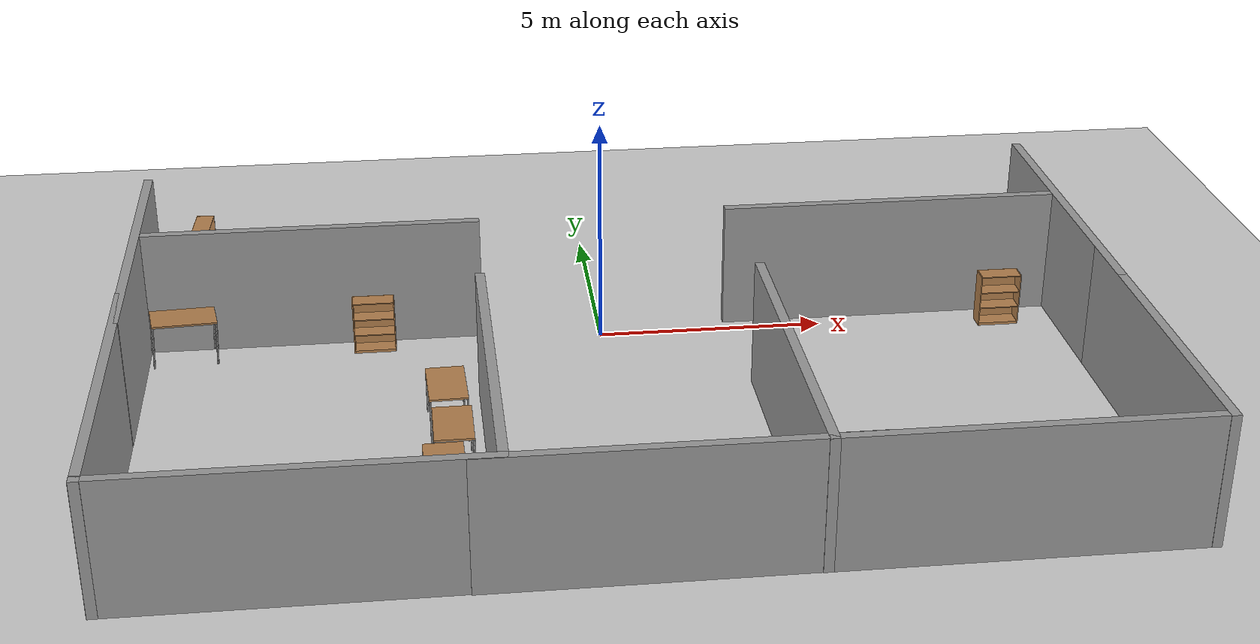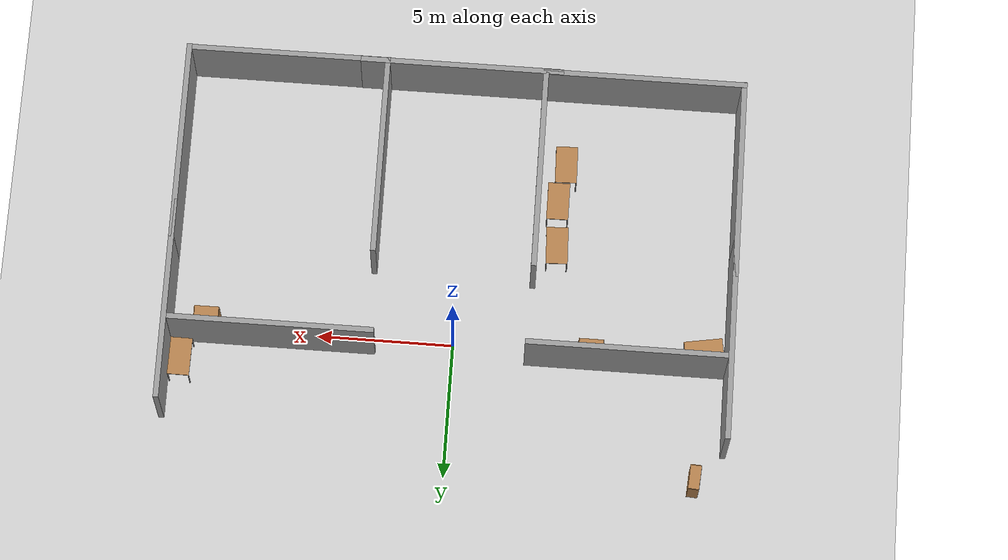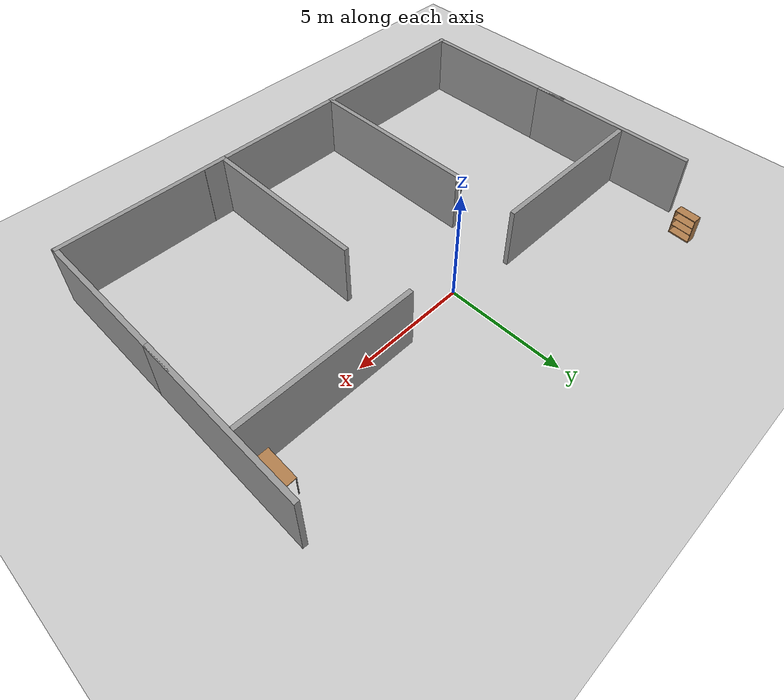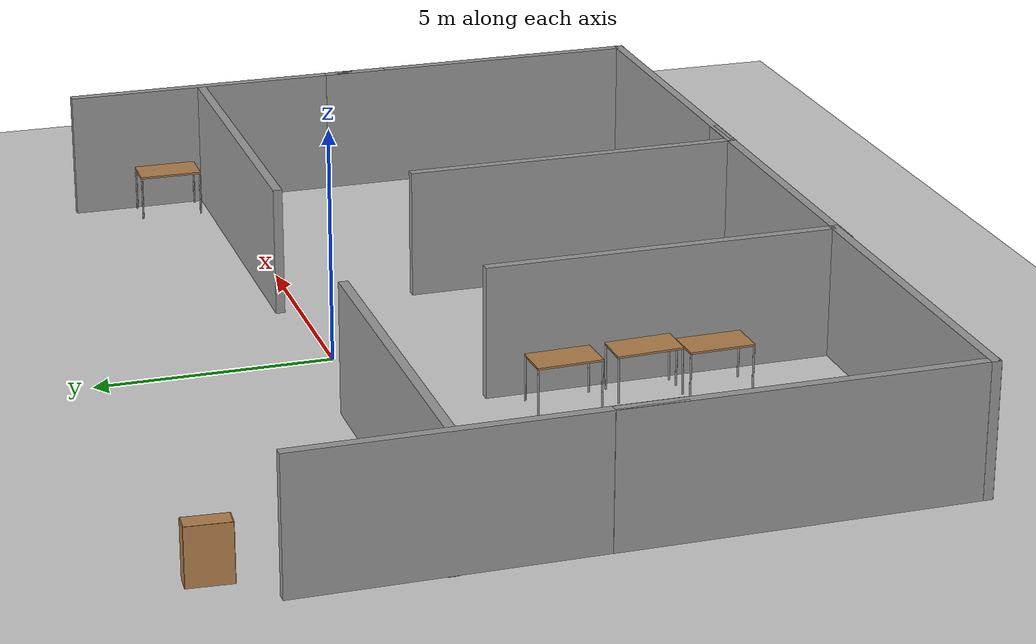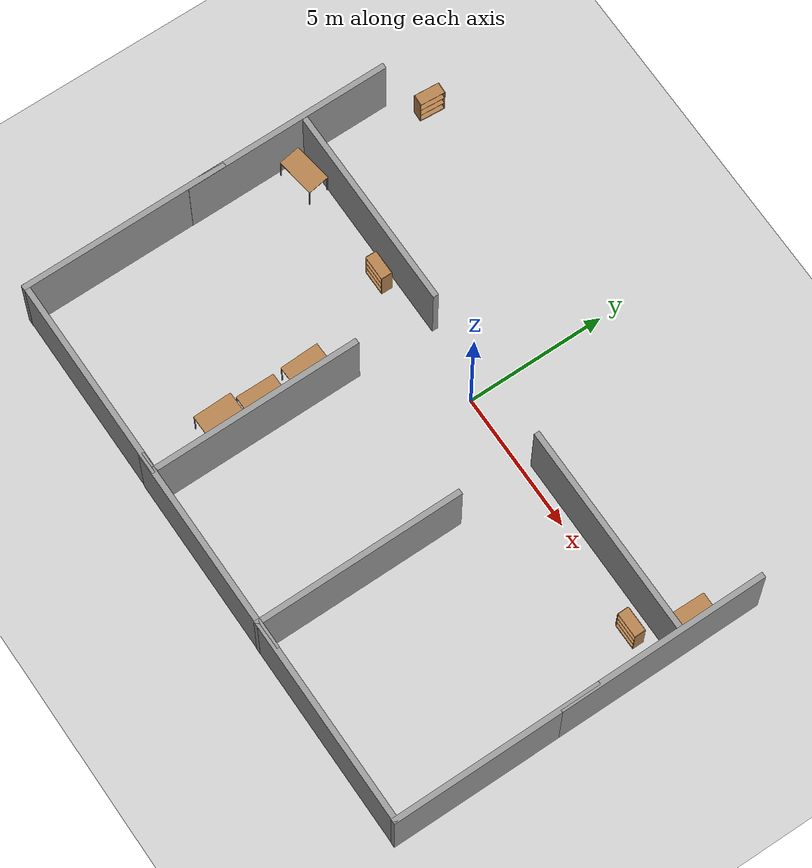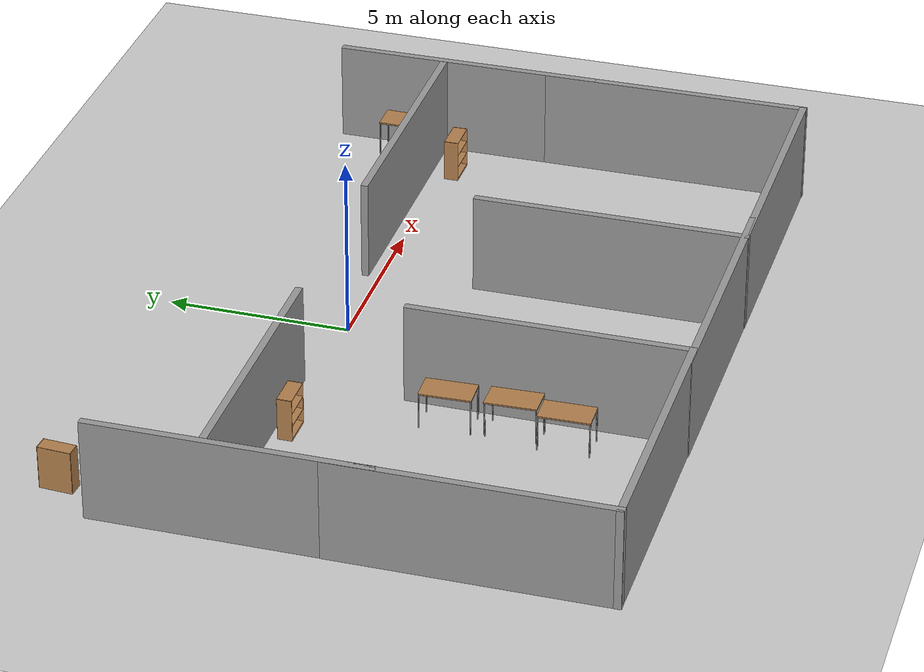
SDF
<sdf version="1.6">
 <world name="default">
  <model name="ground_plane">
   <static>1</static>
   <link name="link">
    <collision name="collision">
     <geometry><plane><normal>0 0 1</normal><size>100 100</size></plane></geometry>
     <surface><friction><ode><mu>100</mu><mu2>50</mu2></ode></friction></surface>
    </collision>
    <visual name="visual">
     <cast_shadows>0</cast_shadows>
     <geometry><plane><normal>0 0 1</normal><size>100 100</size></plane></geometry>
     <material>
      <script><uri>file://media/materials/scripts/gazebo.material</uri><name>Gazebo/Grey</name></script>
     </material>
    </visual>
   </link>
  </model>
  <model name="grey_wall_0">
   <static>1</static>
   <link name="link">
    <pose>0 0 1.4 0 -0 0</pose>
    <collision name="collision"><geometry><box><size>7.5 0.2 2.8</size></box></geometry></collision>
    <visual name="visual">
     <cast_shadows>0</cast_shadows>
     <geometry><box><size>7.5 0.2 2.8</size></box></geometry>
     <material>
      <script>
       <uri>model://grey_wall/materials/scripts</uri>
       <uri>model://grey_wall/materials/textures</uri>
       <name>vrc/grey_wall</name>
      </script>
     </material>
    </visual>
   </link>
   <pose>-6.3811 -9.93831 0 0 -0 0</pose>
  </model>
  <model name="grey_wall_clone_1_clone">
   <static>1</static>
   <link name="link">
    <pose>0 0 1.4 0 -0 0</pose>
    <collision name="collision"><geometry><box><size>7.5 0.2 2.8</size></box></geometry></collision>
    <visual name="visual">
     <cast_shadows>0</cast_shadows>
     <geometry><box><size>7.5 0.2 2.8</size></box></geometry>
     <material>
      <script>
       <uri>model://grey_wall/materials/scripts</uri>
       <uri>model://grey_wall/materials/textures</uri>
       <name>vrc/grey_wall</name>
      </script>
     </material>
    </visual>
   </link>
   <pose>-10.0659 -0.208527 0 0 0 -1.56602</pose>
  </model>
  <model name="grey_wall_clone_1_clone_clone">
   <static>1</static>
   <link name="link">
    <pose>0 0 1.4 0 -0 0</pose>
    <collision name="collision"><geometry><box><size>7.5 0.2 2.8</size></box></geometry></collision>
    <visual name="visual">
     <cast_shadows>0</cast_shadows>
     <geometry><box><size>7.5 0.2 2.8</size></box></geometry>
     <material>
      <script>
       <uri>model://grey_wall/materials/scripts</uri>
       <uri>model://grey_wall/materials/textures</uri>
       <name>vrc/grey_wall</name>
      </script>
     </material>
    </visual>
   </link>
   <pose>-10.0445 -6.29465 0 0 0 -1.56602</pose>
  </model>
  <model name="grey_wall_0_clone">
   <static>1</static>
   <link name="link">
    <pose>0 0 1.4 0 -0 0</pose>
    <collision name="collision"><geometry><box><size>7.5 0.2 2.8</size></box></geometry></collision>
    <visual name="visual">
     <cast_shadows>0</cast_shadows>
     <geometry><box><size>7.5 0.2 2.8</size></box></geometry>
     <material>
      <script>
       <uri>model://grey_wall/materials/scripts</uri>
       <uri>model://grey_wall/materials/textures</uri>
       <name>vrc/grey_wall</name>
      </script>
     </material>
    </visual>
   </link>
   <pose>6.79056 -9.96838 0 0 -0 0</pose>
  </model>
  <model name="grey_wall_clone_1_clone_0_clone">
   <static>1</static>
   <link name="link">
    <pose>0 0 1.4 0 -0 0</pose>
    <collision name="collision"><geometry><box><size>7.5 0.2 2.8</size></box></geometry></collision>
    <visual name="visual">
     <cast_shadows>0</cast_shadows>
     <geometry><box><size>7.5 0.2 2.8</size></box></geometry>
     <material>
      <script>
       <uri>model://grey_wall/materials/scripts</uri>
       <uri>model://grey_wall/materials/textures</uri>
       <name>vrc/grey_wall</name>
      </script>
     </material>
    </visual>
   </link>
   <pose>10.4306 -0.266004 0 0 0 -1.56602</pose>
  </model>
  <model name="grey_wall_clone_1_clone_0_clone_0">
   <static>1</static>
   <link name="link">
    <pose>0 0 1.4 0 -0 0</pose>
    <collision name="collision"><geometry><box><size>7.5 0.2 2.8</size></box></geometry></collision>
    <visual name="visual">
     <cast_shadows>0</cast_shadows>
     <geometry><box><size>7.5 0.2 2.8</size></box></geometry>
     <material>
      <script>
       <uri>model://grey_wall/materials/scripts</uri>
       <uri>model://grey_wall/materials/textures</uri>
       <name>vrc/grey_wall</name>
      </script>
     </material>
    </visual>
   </link>
   <pose>10.4587 -6.32755 0 0 0 -1.56602</pose>
  </model>
  <model name="grey_wall_clone_2">
   <static>1</static>
   <link name="link">
    <pose>0 0 1.4 0 -0 0</pose>
    <collision name="collision"><geometry><box><size>7.5 0.2 2.8</size></box></geometry></collision>
    <visual name="visual">
     <cast_shadows>0</cast_shadows>
     <geometry><box><size>7.5 0.2 2.8</size></box></geometry>
     <material>
      <script>
       <uri>model://grey_wall/materials/scripts</uri>
       <uri>model://grey_wall/materials/textures</uri>
       <name>vrc/grey_wall</name>
      </script>
     </material>
    </visual>
   </link>
   <pose>-6.38709 0.430449 -0.0279 0 -0 0</pose>
  </model>
  <model name="grey_wall_clone_3">
   <static>1</static>
   <link name="link">
    <pose>0 0 1.4 0 -0 0</pose>
    <collision name="collision"><geometry><box><size>7.5 0.2 2.8</size></box></geometry></collision>
    <visual name="visual">
     <cast_shadows>0</cast_shadows>
     <geometry><box><size>7.5 0.2 2.8</size></box></geometry>
     <material>
      <script>
       <uri>model://grey_wall/materials/scripts</uri>
       <uri>model://grey_wall/materials/textures</uri>
       <name>vrc/grey_wall</name>
      </script>
     </material>
    </visual>
   </link>
   <pose>6.57612 0.423406 0 0 -0 0</pose>
  </model>
  <model name="grey_wall_clone_1_clone_0_clone_1_clone_clone">
   <static>1</static>
   <link name="link">
    <pose>0 0 1.4 0 -0 0</pose>
    <collision name="collision"><geometry><box><size>7.5 0.2 2.8</size></box></geometry></collision>
    <visual name="visual">
     <cast_shadows>0</cast_shadows>
     <geometry><box><size>7.5 0.2 2.8</size></box></geometry>
     <material>
      <script>
       <uri>model://grey_wall/materials/scripts</uri>
       <uri>model://grey_wall/materials/textures</uri>
       <name>vrc/grey_wall</name>
      </script>
     </material>
    </visual>
   </link>
   <pose>3.11102 -6.32182 0 0 0 -1.56602</pose>
  </model>
  <model name="grey_wall_clone_1_clone_0_clone_1_clone_clone_0">
   <static>1</static>
   <link name="link">
    <pose>0 0 1.4 0 -0 0</pose>
    <collision name="collision"><geometry><box><size>7.5 0.2 2.8</size></box></geometry></collision>
    <visual name="visual">
     <cast_shadows>0</cast_shadows>
     <geometry><box><size>7.5 0.2 2.8</size></box></geometry>
     <material>
      <script>
       <uri>model://grey_wall/materials/scripts</uri>
       <uri>model://grey_wall/materials/textures</uri>
       <name>vrc/grey_wall</name>
      </script>
     </material>
    </visual>
   </link>
   <pose>-2.7422 -6.17524 0 0 0 -1.56602</pose>
  </model>
  <model name="table">
   <static>0</static>
   <link name="link">
    <collision name="surface">
     <pose>0 0 1 0 -0 0</pose>
     <geometry><box><size>1.5 0.8 0.03</size></box></geometry>
     <surface><friction><ode><mu>0.6</mu><mu2>0.6</mu2></ode></friction></surface>
    </collision>
    <visual name="visual1">
     <pose>0 0 1 0 -0 0</pose>
     <geometry><box><size>1.4 0.8 0.04</size></box></geometry>
     <material>
      <script><uri>file://media/materials/scripts/gazebo.material</uri><name>Gazebo/Wood</name></script>
     </material>
    </visual>
    <collision name="front_left_leg">
     <pose>0.68 0.38 0.5 0 -0 0</pose>
     <geometry><cylinder><radius>0.02</radius><length>1</length></cylinder></geometry>
    </collision>
    <visual name="front_left_leg">
     <pose>0.68 0.38 0.5 0 -0 0</pose>
     <geometry><cylinder><radius>0.02</radius><length>1</length></cylinder></geometry>
     <material>
      <script><uri>file://media/materials/scripts/gazebo.material</uri><name>Gazebo/Grey</name></script>
     </material>
    </visual>
    <collision name="front_right_leg">
     <pose>0.68 -0.38 0.5 0 -0 0</pose>
     <geometry><cylinder><radius>0.02</radius><length>1</length></cylinder></geometry>
    </collision>
    <visual name="front_right_leg">
     <pose>0.68 -0.38 0.5 0 -0 0</pose>
     <geometry><cylinder><radius>0.02</radius><length>1</length></cylinder></geometry>
     <material>
      <script><uri>file://media/materials/scripts/gazebo.material</uri><name>Gazebo/Grey</name></script>
     </material>
    </visual>
    <collision name="back_right_leg">
     <pose>-0.68 -0.38 0.5 0 -0 0</pose>
     <geometry><cylinder><radius>0.02</radius><length>1</length></cylinder></geometry>
    </collision>
    <visual name="back_right_leg">
     <pose>-0.68 -0.38 0.5 0 -0 0</pose>
     <geometry><cylinder><radius>0.02</radius><length>1</length></cylinder></geometry>
     <material>
      <script><uri>file://media/materials/scripts/gazebo.material</uri><name>Gazebo/Grey</name></script>
     </material>
    </visual>
    <collision name="back_left_leg">
     <pose>-0.68 0.38 0.5 0 -0 0</pose>
     <geometry><cylinder><radius>0.02</radius><length>1</length></cylinder></geometry>
    </collision>
    <visual name="back_left_leg">
     <pose>-0.68 0.38 0.5 0 -0 0</pose>
     <geometry><cylinder><radius>0.02</radius><length>1</length></cylinder></geometry>
     <material>
      <script><uri>file://media/materials/scripts/gazebo.material</uri><name>Gazebo/Grey</name></script>
     </material>
    </visual>
    <inertial>
     <inertia><ixx>1</ixx><ixy>0</ixy><ixz>0</ixz><iyy>1</iyy><iyz>0</iyz><izz>1</izz></inertia>
     <mass>1</mass>
    </inertial>
   </link>
   <pose>-9.21004 -0.177966 0.035504 0.011453 0.044482 0.156842</pose>
  </model>
  <model name="table_clone">
   <static>0</static>
   <link name="link">
    <collision name="surface">
     <pose>0 0 1 0 -0 0</pose>
     <geometry><box><size>1.5 0.8 0.03</size></box></geometry>
     <surface><friction><ode><mu>0.6</mu><mu2>0.6</mu2></ode></friction></surface>
    </collision>
    <visual name="visual1">
     <pose>0 0 1 0 -0 0</pose>
     <geometry><box><size>1.4 0.8 0.04</size></box></geometry>
     <material>
      <script><uri>file://media/materials/scripts/gazebo.material</uri><name>Gazebo/Wood</name></script>
     </material>
    </visual>
    <collision name="front_left_leg">
     <pose>0.68 0.38 0.5 0 -0 0</pose>
     <geometry><cylinder><radius>0.02</radius><length>1</length></cylinder></geometry>
    </collision>
    <visual name="front_left_leg">
     <pose>0.68 0.38 0.5 0 -0 0</pose>
     <geometry><cylinder><radius>0.02</radius><length>1</length></cylinder></geometry>
     <material>
      <script><uri>file://media/materials/scripts/gazebo.material</uri><name>Gazebo/Grey</name></script>
     </material>
    </visual>
    <collision name="front_right_leg">
     <pose>0.68 -0.38 0.5 0 -0 0</pose>
     <geometry><cylinder><radius>0.02</radius><length>1</length></cylinder></geometry>
    </collision>
    <visual name="front_right_leg">
     <pose>0.68 -0.38 0.5 0 -0 0</pose>
     <geometry><cylinder><radius>0.02</radius><length>1</length></cylinder></geometry>
     <material>
      <script><uri>file://media/materials/scripts/gazebo.material</uri><name>Gazebo/Grey</name></script>
     </material>
    </visual>
    <collision name="back_right_leg">
     <pose>-0.68 -0.38 0.5 0 -0 0</pose>
     <geometry><cylinder><radius>0.02</radius><length>1</length></cylinder></geometry>
    </collision>
    <visual name="back_right_leg">
     <pose>-0.68 -0.38 0.5 0 -0 0</pose>
     <geometry><cylinder><radius>0.02</radius><length>1</length></cylinder></geometry>
     <material>
      <script><uri>file://media/materials/scripts/gazebo.material</uri><name>Gazebo/Grey</name></script>
     </material>
    </visual>
    <collision name="back_left_leg">
     <pose>-0.68 0.38 0.5 0 -0 0</pose>
     <geometry><cylinder><radius>0.02</radius><length>1</length></cylinder></geometry>
    </collision>
    <visual name="back_left_leg">
     <pose>-0.68 0.38 0.5 0 -0 0</pose>
     <geometry><cylinder><radius>0.02</radius><length>1</length></cylinder></geometry>
     <material>
      <script><uri>file://media/materials/scripts/gazebo.material</uri><name>Gazebo/Grey</name></script>
     </material>
    </visual>
    <inertial>
     <inertia><ixx>1</ixx><ixy>0</ixy><ixz>0</ixz><iyy>1</iyy><iyz>0</iyz><izz>1</izz></inertia>
     <mass>1</mass>
    </inertial>
   </link>
   <pose>-3.56323 -3.82904 -7e-06 0 -4e-06 1.60529</pose>
  </model>
  <model name="table_clone_3">
   <static>0</static>
   <link name="link">
    <collision name="surface">
     <pose>0 0 1 0 -0 0</pose>
     <geometry><box><size>1.5 0.8 0.03</size></box></geometry>
     <surface><friction><ode><mu>0.6</mu><mu2>0.6</mu2></ode></friction></surface>
    </collision>
    <visual name="visual1">
     <pose>0 0 1 0 -0 0</pose>
     <geometry><box><size>1.4 0.8 0.04</size></box></geometry>
     <material>
      <script><uri>file://media/materials/scripts/gazebo.material</uri><name>Gazebo/Wood</name></script>
     </material>
    </visual>
    <collision name="front_left_leg">
     <pose>0.68 0.38 0.5 0 -0 0</pose>
     <geometry><cylinder><radius>0.02</radius><length>1</length></cylinder></geometry>
    </collision>
    <visual name="front_left_leg">
     <pose>0.68 0.38 0.5 0 -0 0</pose>
     <geometry><cylinder><radius>0.02</radius><length>1</length></cylinder></geometry>
     <material>
      <script><uri>file://media/materials/scripts/gazebo.material</uri><name>Gazebo/Grey</name></script>
     </material>
    </visual>
    <collision name="front_right_leg">
     <pose>0.68 -0.38 0.5 0 -0 0</pose>
     <geometry><cylinder><radius>0.02</radius><length>1</length></cylinder></geometry>
    </collision>
    <visual name="front_right_leg">
     <pose>0.68 -0.38 0.5 0 -0 0</pose>
     <geometry><cylinder><radius>0.02</radius><length>1</length></cylinder></geometry>
     <material>
      <script><uri>file://media/materials/scripts/gazebo.material</uri><name>Gazebo/Grey</name></script>
     </material>
    </visual>
    <collision name="back_right_leg">
     <pose>-0.68 -0.38 0.5 0 -0 0</pose>
     <geometry><cylinder><radius>0.02</radius><length>1</length></cylinder></geometry>
    </collision>
    <visual name="back_right_leg">
     <pose>-0.68 -0.38 0.5 0 -0 0</pose>
     <geometry><cylinder><radius>0.02</radius><length>1</length></cylinder></geometry>
     <material>
      <script><uri>file://media/materials/scripts/gazebo.material</uri><name>Gazebo/Grey</name></script>
     </material>
    </visual>
    <collision name="back_left_leg">
     <pose>-0.68 0.38 0.5 0 -0 0</pose>
     <geometry><cylinder><radius>0.02</radius><length>1</length></cylinder></geometry>
    </collision>
    <visual name="back_left_leg">
     <pose>-0.68 0.38 0.5 0 -0 0</pose>
     <geometry><cylinder><radius>0.02</radius><length>1</length></cylinder></geometry>
     <material>
      <script><uri>file://media/materials/scripts/gazebo.material</uri><name>Gazebo/Grey</name></script>
     </material>
    </visual>
    <inertial>
     <inertia><ixx>1</ixx><ixy>0</ixy><ixz>0</ixz><iyy>1</iyy><iyz>0</iyz><izz>1</izz></inertia>
     <mass>1</mass>
    </inertial>
   </link>
   <pose>9.86597 1.39822 -8e-06 0 0 -1.58101</pose>
  </model>
  <model name="table_clone_clone">
   <static>0</static>
   <link name="link">
    <collision name="surface">
     <pose>0 0 1 0 -0 0</pose>
     <geometry><box><size>1.5 0.8 0.03</size></box></geometry>
     <surface><friction><ode><mu>0.6</mu><mu2>0.6</mu2></ode></friction></surface>
    </collision>
    <visual name="visual1">
     <pose>0 0 1 0 -0 0</pose>
     <geometry><box><size>1.4 0.8 0.04</size></box></geometry>
     <material>
      <script><uri>file://media/materials/scripts/gazebo.material</uri><name>Gazebo/Wood</name></script>
     </material>
    </visual>
    <collision name="front_left_leg">
     <pose>0.68 0.38 0.5 0 -0 0</pose>
     <geometry><cylinder><radius>0.02</radius><length>1</length></cylinder></geometry>
    </collision>
    <visual name="front_left_leg">
     <pose>0.68 0.38 0.5 0 -0 0</pose>
     <geometry><cylinder><radius>0.02</radius><length>1</length></cylinder></geometry>
     <material>
      <script><uri>file://media/materials/scripts/gazebo.material</uri><name>Gazebo/Grey</name></script>
     </material>
    </visual>
    <collision name="front_right_leg">
     <pose>0.68 -0.38 0.5 0 -0 0</pose>
     <geometry><cylinder><radius>0.02</radius><length>1</length></cylinder></geometry>
    </collision>
    <visual name="front_right_leg">
     <pose>0.68 -0.38 0.5 0 -0 0</pose>
     <geometry><cylinder><radius>0.02</radius><length>1</length></cylinder></geometry>
     <material>
      <script><uri>file://media/materials/scripts/gazebo.material</uri><name>Gazebo/Grey</name></script>
     </material>
    </visual>
    <collision name="back_right_leg">
     <pose>-0.68 -0.38 0.5 0 -0 0</pose>
     <geometry><cylinder><radius>0.02</radius><length>1</length></cylinder></geometry>
    </collision>
    <visual name="back_right_leg">
     <pose>-0.68 -0.38 0.5 0 -0 0</pose>
     <geometry><cylinder><radius>0.02</radius><length>1</length></cylinder></geometry>
     <material>
      <script><uri>file://media/materials/scripts/gazebo.material</uri><name>Gazebo/Grey</name></script>
     </material>
    </visual>
    <collision name="back_left_leg">
     <pose>-0.68 0.38 0.5 0 -0 0</pose>
     <geometry><cylinder><radius>0.02</radius><length>1</length></cylinder></geometry>
    </collision>
    <visual name="back_left_leg">
     <pose>-0.68 0.38 0.5 0 -0 0</pose>
     <geometry><cylinder><radius>0.02</radius><length>1</length></cylinder></geometry>
     <material>
      <script><uri>file://media/materials/scripts/gazebo.material</uri><name>Gazebo/Grey</name></script>
     </material>
    </visual>
    <inertial>
     <inertia><ixx>1</ixx><ixy>0</ixy><ixz>0</ixz><iyy>1</iyy><iyz>0</iyz><izz>1</izz></inertia>
     <mass>1</mass>
    </inertial>
   </link>
   <pose>-3.49633 -5.56321 0.015218 -1.3e-05 0.021735 1.57543</pose>
  </model>
  <model name="table_clone_clone_0">
   <static>0</static>
   <link name="link">
    <collision name="surface">
     <pose>0 0 1 0 -0 0</pose>
     <geometry><box><size>1.5 0.8 0.03</size></box></geometry>
     <surface><friction><ode><mu>0.6</mu><mu2>0.6</mu2></ode></friction></surface>
    </collision>
    <visual name="visual1">
     <pose>0 0 1 0 -0 0</pose>
     <geometry><box><size>1.4 0.8 0.04</size></box></geometry>
     <material>
      <script><uri>file://media/materials/scripts/gazebo.material</uri><name>Gazebo/Wood</name></script>
     </material>
    </visual>
    <collision name="front_left_leg">
     <pose>0.68 0.38 0.5 0 -0 0</pose>
     <geometry><cylinder><radius>0.02</radius><length>1</length></cylinder></geometry>
    </collision>
    <visual name="front_left_leg">
     <pose>0.68 0.38 0.5 0 -0 0</pose>
     <geometry><cylinder><radius>0.02</radius><length>1</length></cylinder></geometry>
     <material>
      <script><uri>file://media/materials/scripts/gazebo.material</uri><name>Gazebo/Grey</name></script>
     </material>
    </visual>
    <collision name="front_right_leg">
     <pose>0.68 -0.38 0.5 0 -0 0</pose>
     <geometry><cylinder><radius>0.02</radius><length>1</length></cylinder></geometry>
    </collision>
    <visual name="front_right_leg">
     <pose>0.68 -0.38 0.5 0 -0 0</pose>
     <geometry><cylinder><radius>0.02</radius><length>1</length></cylinder></geometry>
     <material>
      <script><uri>file://media/materials/scripts/gazebo.material</uri><name>Gazebo/Grey</name></script>
     </material>
    </visual>
    <collision name="back_right_leg">
     <pose>-0.68 -0.38 0.5 0 -0 0</pose>
     <geometry><cylinder><radius>0.02</radius><length>1</length></cylinder></geometry>
    </collision>
    <visual name="back_right_leg">
     <pose>-0.68 -0.38 0.5 0 -0 0</pose>
     <geometry><cylinder><radius>0.02</radius><length>1</length></cylinder></geometry>
     <material>
      <script><uri>file://media/materials/scripts/gazebo.material</uri><name>Gazebo/Grey</name></script>
     </material>
    </visual>
    <collision name="back_left_leg">
     <pose>-0.68 0.38 0.5 0 -0 0</pose>
     <geometry><cylinder><radius>0.02</radius><length>1</length></cylinder></geometry>
    </collision>
    <visual name="back_left_leg">
     <pose>-0.68 0.38 0.5 0 -0 0</pose>
     <geometry><cylinder><radius>0.02</radius><length>1</length></cylinder></geometry>
     <material>
      <script><uri>file://media/materials/scripts/gazebo.material</uri><name>Gazebo/Grey</name></script>
     </material>
    </visual>
    <inertial>
     <inertia><ixx>1</ixx><ixy>0</ixy><ixz>0</ixz><iyy>1</iyy><iyz>0</iyz><izz>1</izz></inertia>
     <mass>1</mass>
    </inertial>
   </link>
   <pose>-3.70938 -6.99051 1e-06 0 1e-06 1.5936</pose>
  </model>
  <model name="grey_wall_0_clone_0">
   <static>1</static>
   <link name="link">
    <pose>0 0 1.4 0 -0 0</pose>
    <collision name="collision"><geometry><box><size>7.5 0.2 2.8</size></box></geometry></collision>
    <visual name="visual">
     <cast_shadows>0</cast_shadows>
     <geometry><box><size>7.5 0.2 2.8</size></box></geometry>
     <material>
      <script>
       <uri>model://grey_wall/materials/scripts</uri>
       <uri>model://grey_wall/materials/textures</uri>
       <name>vrc/grey_wall</name>
      </script>
     </material>
    </visual>
   </link>
   <pose>0.379741 -9.95906 0 0 -0 0</pose>
  </model>
  <model name="bookshelf">
   <static>1</static>
   <link name="link">
    <inertial><mass>1</mass></inertial>
    <collision name="back">
     <pose>0 0.005 0.6 0 -0 0</pose>
     <geometry><box><size>0.9 0.01 1.2</size></box></geometry>
    </collision>
    <visual name="visual1">
     <pose>0 0.005 0.6 0 -0 0</pose>
     <geometry><box><size>0.9 0.01 1.2</size></box></geometry>
     <material>
      <script><uri>file://media/materials/scripts/gazebo.material</uri><name>Gazebo/Wood</name></script>
     </material>
    </visual>
    <collision name="left_side">
     <pose>0.45 -0.195 0.6 0 -0 0</pose>
     <geometry><box><size>0.02 0.4 1.2</size></box></geometry>
    </collision>
    <visual name="visual2">
     <pose>0.45 -0.195 0.6 0 -0 0</pose>
     <geometry><box><size>0.02 0.4 1.2</size></box></geometry>
     <material>
      <script><uri>file://media/materials/scripts/gazebo.material</uri><name>Gazebo/Wood</name></script>
     </material>
    </visual>
    <collision name="right_side">
     <pose>-0.45 -0.195 0.6 0 -0 0</pose>
     <geometry><box><size>0.02 0.4 1.2</size></box></geometry>
    </collision>
    <visual name="visual3">
     <pose>-0.45 -0.195 0.6 0 -0 0</pose>
     <geometry><box><size>0.02 0.4 1.2</size></box></geometry>
     <material>
      <script><uri>file://media/materials/scripts/gazebo.material</uri><name>Gazebo/Wood</name></script>
     </material>
    </visual>
    <collision name="bottom">
     <pose>0 -0.195 0.03 0 -0 0</pose>
     <geometry><box><size>0.88 0.4 0.06</size></box></geometry>
    </collision>
    <visual name="visual4">
     <pose>0 -0.195 0.03 0 -0 0</pose>
     <geometry><box><size>0.88 0.4 0.06</size></box></geometry>
     <material>
      <script><uri>file://media/materials/scripts/gazebo.material</uri><name>Gazebo/Wood</name></script>
     </material>
    </visual>
    <collision name="top">
     <pose>0 -0.195 1.19 0 -0 0</pose>
     <geometry><box><size>0.88 0.4 0.02</size></box></geometry>
    </collision>
    <visual name="visual5">
     <pose>0 -0.195 1.19 0 -0 0</pose>
     <geometry><box><size>0.88 0.4 0.02</size></box></geometry>
     <material>
      <script><uri>file://media/materials/scripts/gazebo.material</uri><name>Gazebo/Wood</name></script>
     </material>
    </visual>
    <collision name="low_shelf">
     <pose>0 -0.195 0.43 0 -0 0</pose>
     <geometry><box><size>0.88 0.4 0.02</size></box></geometry>
    </collision>
    <visual name="visual6">
     <pose>0 -0.195 0.43 0 -0 0</pose>
     <geometry><box><size>0.88 0.4 0.02</size></box></geometry>
     <material>
      <script><uri>file://media/materials/scripts/gazebo.material</uri><name>Gazebo/Wood</name></script>
     </material>
    </visual>
    <collision name="high_shelf">
     <pose>0 -0.195 0.8 0 -0 0</pose>
     <geometry><box><size>0.88 0.4 0.02</size></box></geometry>
    </collision>
    <visual name="visual7">
     <pose>0 -0.195 0.8 0 -0 0</pose>
     <geometry><box><size>0.88 0.4 0.02</size></box></geometry>
     <material>
      <script><uri>file://media/materials/scripts/gazebo.material</uri><name>Gazebo/Wood</name></script>
     </material>
    </visual>
   </link>
   <pose>-5.04593 0.107883 0 0 -0 0</pose>
  </model>
  <model name="bookshelf_0">
   <static>1</static>
   <link name="link">
    <inertial><mass>1</mass></inertial>
    <collision name="back">
     <pose>0 0.005 0.6 0 -0 0</pose>
     <geometry><box><size>0.9 0.01 1.2</size></box></geometry>
    </collision>
    <visual name="visual1">
     <pose>0 0.005 0.6 0 -0 0</pose>
     <geometry><box><size>0.9 0.01 1.2</size></box></geometry>
     <material>
      <script><uri>file://media/materials/scripts/gazebo.material</uri><name>Gazebo/Wood</name></script>
     </material>
    </visual>
    <collision name="left_side">
     <pose>0.45 -0.195 0.6 0 -0 0</pose>
     <geometry><box><size>0.02 0.4 1.2</size></box></geometry>
    </collision>
    <visual name="visual2">
     <pose>0.45 -0.195 0.6 0 -0 0</pose>
     <geometry><box><size>0.02 0.4 1.2</size></box></geometry>
     <material>
      <script><uri>file://media/materials/scripts/gazebo.material</uri><name>Gazebo/Wood</name></script>
     </material>
    </visual>
    <collision name="right_side">
     <pose>-0.45 -0.195 0.6 0 -0 0</pose>
     <geometry><box><size>0.02 0.4 1.2</size></box></geometry>
    </collision>
    <visual name="visual3">
     <pose>-0.45 -0.195 0.6 0 -0 0</pose>
     <geometry><box><size>0.02 0.4 1.2</size></box></geometry>
     <material>
      <script><uri>file://media/materials/scripts/gazebo.material</uri><name>Gazebo/Wood</name></script>
     </material>
    </visual>
    <collision name="bottom">
     <pose>0 -0.195 0.03 0 -0 0</pose>
     <geometry><box><size>0.88 0.4 0.06</size></box></geometry>
    </collision>
    <visual name="visual4">
     <pose>0 -0.195 0.03 0 -0 0</pose>
     <geometry><box><size>0.88 0.4 0.06</size></box></geometry>
     <material>
      <script><uri>file://media/materials/scripts/gazebo.material</uri><name>Gazebo/Wood</name></script>
     </material>
    </visual>
    <collision name="top">
     <pose>0 -0.195 1.19 0 -0 0</pose>
     <geometry><box><size>0.88 0.4 0.02</size></box></geometry>
    </collision>
    <visual name="visual5">
     <pose>0 -0.195 1.19 0 -0 0</pose>
     <geometry><box><size>0.88 0.4 0.02</size></box></geometry>
     <material>
      <script><uri>file://media/materials/scripts/gazebo.material</uri><name>Gazebo/Wood</name></script>
     </material>
    </visual>
    <collision name="low_shelf">
     <pose>0 -0.195 0.43 0 -0 0</pose>
     <geometry><box><size>0.88 0.4 0.02</size></box></geometry>
    </collision>
    <visual name="visual6">
     <pose>0 -0.195 0.43 0 -0 0</pose>
     <geometry><box><size>0.88 0.4 0.02</size></box></geometry>
     <material>
      <script><uri>file://media/materials/scripts/gazebo.material</uri><name>Gazebo/Wood</name></script>
     </material>
    </visual>
    <collision name="high_shelf">
     <pose>0 -0.195 0.8 0 -0 0</pose>
     <geometry><box><size>0.88 0.4 0.02</size></box></geometry>
    </collision>
    <visual name="visual7">
     <pose>0 -0.195 0.8 0 -0 0</pose>
     <geometry><box><size>0.88 0.4 0.02</size></box></geometry>
     <material>
      <script><uri>file://media/materials/scripts/gazebo.material</uri><name>Gazebo/Wood</name></script>
     </material>
    </visual>
   </link>
   <pose>9.04578 -0.117701 0 0 -0 0</pose>
  </model>
  <model name="bookshelf_1">
   <static>1</static>
   <link name="link">
    <inertial><mass>1</mass></inertial>
    <collision name="back">
     <pose>0 0.005 0.6 0 -0 0</pose>
     <geometry><box><size>0.9 0.01 1.2</size></box></geometry>
    </collision>
    <visual name="visual1">
     <pose>0 0.005 0.6 0 -0 0</pose>
     <geometry><box><size>0.9 0.01 1.2</size></box></geometry>
     <material>
      <script><uri>file://media/materials/scripts/gazebo.material</uri><name>Gazebo/Wood</name></script>
     </material>
    </visual>
    <collision name="left_side">
     <pose>0.45 -0.195 0.6 0 -0 0</pose>
     <geometry><box><size>0.02 0.4 1.2</size></box></geometry>
    </collision>
    <visual name="visual2">
     <pose>0.45 -0.195 0.6 0 -0 0</pose>
     <geometry><box><size>0.02 0.4 1.2</size></box></geometry>
     <material>
      <script><uri>file://media/materials/scripts/gazebo.material</uri><name>Gazebo/Wood</name></script>
     </material>
    </visual>
    <collision name="right_side">
     <pose>-0.45 -0.195 0.6 0 -0 0</pose>
     <geometry><box><size>0.02 0.4 1.2</size></box></geometry>
    </collision>
    <visual name="visual3">
     <pose>-0.45 -0.195 0.6 0 -0 0</pose>
     <geometry><box><size>0.02 0.4 1.2</size></box></geometry>
     <material>
      <script><uri>file://media/materials/scripts/gazebo.material</uri><name>Gazebo/Wood</name></script>
     </material>
    </visual>
    <collision name="bottom">
     <pose>0 -0.195 0.03 0 -0 0</pose>
     <geometry><box><size>0.88 0.4 0.06</size></box></geometry>
    </collision>
    <visual name="visual4">
     <pose>0 -0.195 0.03 0 -0 0</pose>
     <geometry><box><size>0.88 0.4 0.06</size></box></geometry>
     <material>
      <script><uri>file://media/materials/scripts/gazebo.material</uri><name>Gazebo/Wood</name></script>
     </material>
    </visual>
    <collision name="top">
     <pose>0 -0.195 1.19 0 -0 0</pose>
     <geometry><box><size>0.88 0.4 0.02</size></box></geometry>
    </collision>
    <visual name="visual5">
     <pose>0 -0.195 1.19 0 -0 0</pose>
     <geometry><box><size>0.88 0.4 0.02</size></box></geometry>
     <material>
      <script><uri>file://media/materials/scripts/gazebo.material</uri><name>Gazebo/Wood</name></script>
     </material>
    </visual>
    <collision name="low_shelf">
     <pose>0 -0.195 0.43 0 -0 0</pose>
     <geometry><box><size>0.88 0.4 0.02</size></box></geometry>
    </collision>
    <visual name="visual6">
     <pose>0 -0.195 0.43 0 -0 0</pose>
     <geometry><box><size>0.88 0.4 0.02</size></box></geometry>
     <material>
      <script><uri>file://media/materials/scripts/gazebo.material</uri><name>Gazebo/Wood</name></script>
     </material>
    </visual>
    <collision name="high_shelf">
     <pose>0 -0.195 0.8 0 -0 0</pose>
     <geometry><box><size>0.88 0.4 0.02</size></box></geometry>
    </collision>
    <visual name="visual7">
     <pose>0 -0.195 0.8 0 -0 0</pose>
     <geometry><box><size>0.88 0.4 0.02</size></box></geometry>
     <material>
      <script><uri>file://media/materials/scripts/gazebo.material</uri><name>Gazebo/Wood</name></script>
     </material>
    </visual>
   </link>
   <pose>-9.2669 4.62587 0 0 -0 1.50527</pose>
  </model>
 </world>
</sdf>
